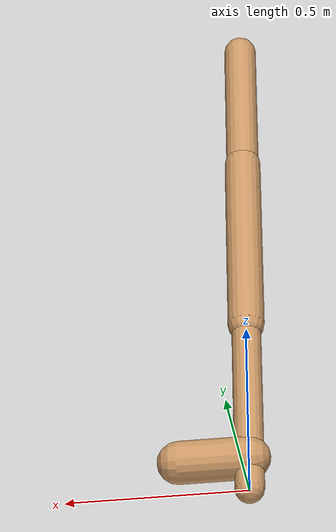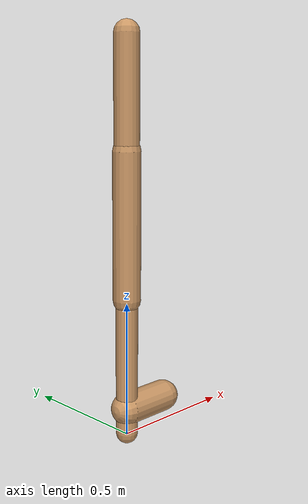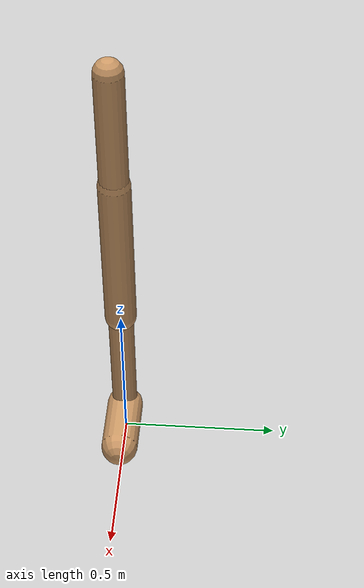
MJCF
<mujoco model="walker2d">
  <compiler angle="degree" coordinate="global" inertiafromgeom="true" />
  <default>
    <joint armature="0.01" damping=".1" limited="true" />
    <geom conaffinity="0" condim="3" contype="1" density="1000" friction="0.8 .1 .1" rgba="0.8 0.6 .4 1" />
  </default>
  <option integrator="RK4" timestep="0.002" />
  <worldbody>

    <body name="torso" pos="0 0 0.17513136836162851">
      <joint armature="0" axis="1 0 0" damping="0" limited="false" name="ignorex" pos="0 0 0" stiffness="0" type="slide" />
      <joint armature="0" axis="0 0 1" damping="0" limited="false" name="ignorez" pos="0 0 0" ref="1.25" stiffness="0" type="slide" />
      <joint armature="0" axis="0 1 0" damping="0" limited="false" name="ignorey" pos="0 0 0" stiffness="0" type="hinge" />
      <geom fromto="0 0 1.45 0 0 1.05" name="torso_geom" size="0.04607118255954507" type="capsule" />
      <body name="thigh">
        <joint axis="0 -1 0" name="thigh_joint" pos="0 0 1.05" range="-150 0" type="hinge" />
        <geom fromto="0.0 0.0 1.05 0.0 0.0 0.5170430360392285" name="thigh_geom" size="0.05096591456361166" type="capsule" />
        <body name="leg" pos="0.0 0.0 -0.08295696396077146">
          <joint axis="0 -1 0" name="leg_joint" pos="0 0 0.6" range="-150 0" type="hinge" />
          <geom fromto="0.0 0.0 0.6 0.0 0.0 0.007825595599142893" name="leg_geom" size="0.04077273165088933" type="capsule" />
          <body name="foot" pos="0.0 0.0 -0.09217440440085711">
            <joint axis="0 -1 0" name="foot_joint" pos="0 0 0.1" range="-45 45" type="hinge" />
            <geom fromto="0.0 0.0 0.1 0.19090663319725248 0.0 0.1" name="foot_geom" size="0.05907379691469515" type="capsule" />
          </body>
        </body>
      </body>

      <body name="thigh_left">
        <joint axis="0 -1 0" name="thigh_left_joint" pos="0 0 1.05" range="-150 0" type="hinge" />
        <geom fromto="0.0 0.0 1.05 0.0 0.0 0.5170430360392285" name="thigh_left_geom" rgba=".7 .3 .6 1" size="0.05096591456361166" type="capsule" />
        <body name="leg_left" pos="0.0 0.0 -0.08295696396077146">
          <joint axis="0 -1 0" name="leg_left_joint" pos="0 0 0.6" range="-150 0" type="hinge" />
          <geom fromto="0.0 0.0 0.6 0.0 0.0 0.007825595599142893" name="leg_left_geom" rgba=".7 .3 .6 1" size="0.04077273165088933" type="capsule" />
          <body name="foot_left" pos="0.0 0.0 -0.09217440440085711">
            <joint axis="0 -1 0" name="foot_left_joint" pos="0 0 0.1" range="-45 45" type="hinge" />
            <geom fromto="0.0 0.0 0.1 0.19090663319725248 0.0 0.1" name="foot_left_geom" rgba=".7 .3 .6 1" size="0.05907379691469515" type="capsule" />
          </body>
        </body>
      </body>
    </body>
  </worldbody>
  <actuator>

    <motor ctrllimited="true" ctrlrange="-1.0 1.0" gear="100" joint="thigh_joint" />
    <motor ctrllimited="true" ctrlrange="-1.0 1.0" gear="100" joint="leg_joint" />
    <motor ctrllimited="true" ctrlrange="-1.0 1.0" gear="100" joint="foot_joint" />
    <motor ctrllimited="true" ctrlrange="-1.0 1.0" gear="100" joint="thigh_left_joint" />
    <motor ctrllimited="true" ctrlrange="-1.0 1.0" gear="100" joint="leg_left_joint" />
    <motor ctrllimited="true" ctrlrange="-1.0 1.0" gear="100" joint="foot_left_joint" />

  </actuator>
</mujoco>
